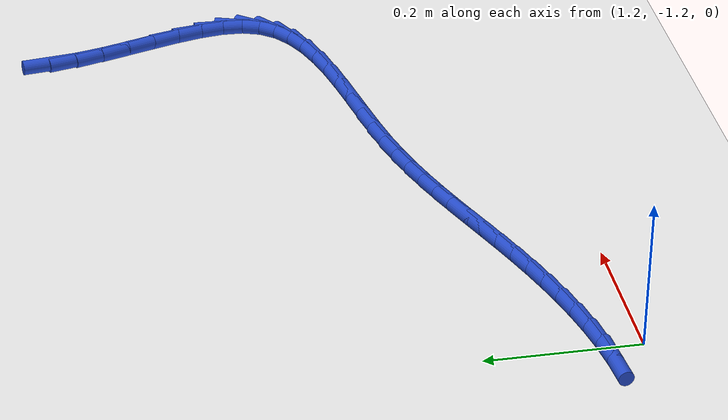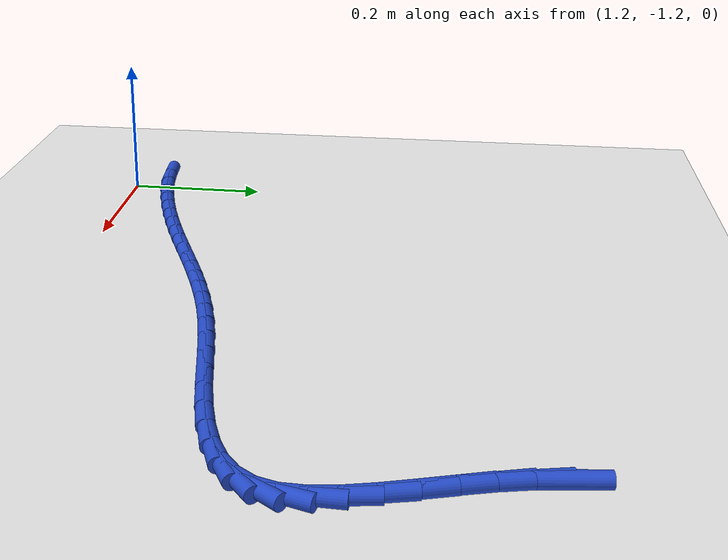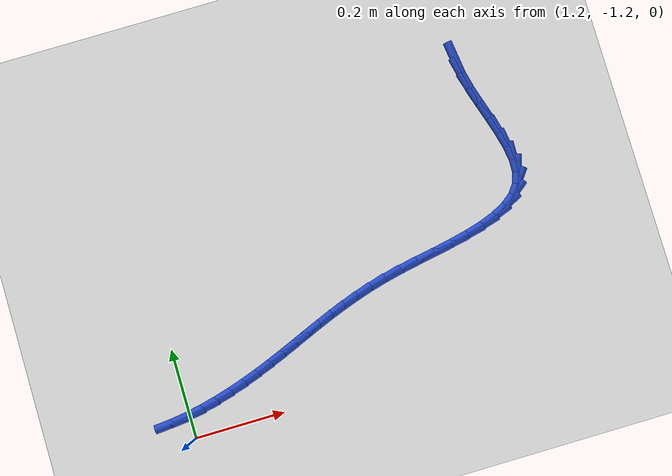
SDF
<sdf version="1.6">
 <world name="default">
  <model name="ground_plane">
   <static>1</static>
   <link name="link">
    <collision name="collision">
     <geometry><plane><normal>0 0 1</normal><size>100 100</size></plane></geometry>
     <surface><friction><ode><mu>100</mu><mu2>50</mu2></ode></friction></surface>
    </collision>
    <visual name="visual">
     <cast_shadows>0</cast_shadows>
     <geometry><plane><normal>0 0 1</normal><size>100 100</size></plane></geometry>
     <material>
      <script><uri>file://media/materials/scripts/gazebo.material</uri><name>Gazebo/WhiteGlow</name></script>
     </material>
    </visual>
   </link>
  </model>
  <model name="line">
   <link name="link_124">
    <pose>1.9785658915221223 -0.5602974525622767 0.01 0 1.57 -1.447188002186964</pose>
    <collision name="collision">
     <geometry><cylinder><radius>0.01</radius><length>0.08</length></cylinder></geometry>
    </collision>
    <visual name="visual">
     <material>
      <script><name>Gazebo/Blue</name><uri>file://media/materials/scripts/gazebo.material</uri></script>
     </material>
     <geometry><cylinder><radius>0.01</radius><length>0.08</length></cylinder></geometry>
    </visual>
   </link>
   <link name="link_125">
    <pose>1.9830121693577076 -0.5960847656764535 0.01 0 1.57 -1.3464169324519997</pose>
    <collision name="collision">
     <geometry><cylinder><radius>0.01</radius><length>0.08</length></cylinder></geometry>
    </collision>
    <visual name="visual">
     <material>
      <script><name>Gazebo/Blue</name><uri>file://media/materials/scripts/gazebo.material</uri></script>
     </material>
     <geometry><cylinder><radius>0.01</radius><length>0.08</length></cylinder></geometry>
    </visual>
   </link>
   <link name="link_126">
    <pose>1.9914670543561093 -0.6331314663726231 0.01 0 1.57 -1.2892751125752362</pose>
    <collision name="collision">
     <geometry><cylinder><radius>0.01</radius><length>0.08</length></cylinder></geometry>
    </collision>
    <visual name="visual">
     <material>
      <script><name>Gazebo/Blue</name><uri>file://media/materials/scripts/gazebo.material</uri></script>
     </material>
     <geometry><cylinder><radius>0.01</radius><length>0.08</length></cylinder></geometry>
    </visual>
   </link>
   <link name="link_127">
    <pose>2.002332422981825 -0.6707016313281876 0.01 0 1.57 -1.267827433095337</pose>
    <collision name="collision">
     <geometry><cylinder><radius>0.01</radius><length>0.08</length></cylinder></geometry>
    </collision>
    <visual name="visual">
     <material>
      <script><name>Gazebo/Blue</name><uri>file://media/materials/scripts/gazebo.material</uri></script>
     </material>
     <geometry><cylinder><radius>0.01</radius><length>0.08</length></cylinder></geometry>
    </visual>
   </link>
   <link name="link_128">
    <pose>2.014010151699355 -0.7080593372205487 0.01 0 1.57 -1.2801166031504412</pose>
    <collision name="collision">
     <geometry><cylinder><radius>0.01</radius><length>0.08</length></cylinder></geometry>
    </collision>
    <visual name="visual">
     <material>
      <script><name>Gazebo/Blue</name><uri>file://media/materials/scripts/gazebo.material</uri></script>
     </material>
     <geometry><cylinder><radius>0.01</radius><length>0.08</length></cylinder></geometry>
    </visual>
   </link>
   <link name="link_129">
    <pose>2.024902116973196 -0.7444686607271077 0.01 0 1.57 -1.330516857865101</pose>
    <collision name="collision">
     <geometry><cylinder><radius>0.01</radius><length>0.08</length></cylinder></geometry>
    </collision>
    <visual name="visual">
     <material>
      <script><name>Gazebo/Blue</name><uri>file://media/materials/scripts/gazebo.material</uri></script>
     </material>
     <geometry><cylinder><radius>0.01</radius><length>0.08</length></cylinder></geometry>
    </visual>
   </link>
   <link name="link_130">
    <pose>2.0334101952678494 -0.7791936785252662 0.01 0 1.57 -1.431597242822577</pose>
    <collision name="collision">
     <geometry><cylinder><radius>0.01</radius><length>0.08</length></cylinder></geometry>
    </collision>
    <visual name="visual">
     <material>
      <script><name>Gazebo/Blue</name><uri>file://media/materials/scripts/gazebo.material</uri></script>
     </material>
     <geometry><cylinder><radius>0.01</radius><length>0.08</length></cylinder></geometry>
    </visual>
   </link>
   <link name="link_131">
    <pose>2.0379362630478104 -0.8114984672924256 0.01 0 1.57 1.5346503075699747</pose>
    <collision name="collision">
     <geometry><cylinder><radius>0.01</radius><length>0.08</length></cylinder></geometry>
    </collision>
    <visual name="visual">
     <material>
      <script><name>Gazebo/Blue</name><uri>file://media/materials/scripts/gazebo.material</uri></script>
     </material>
     <geometry><cylinder><radius>0.01</radius><length>0.08</length></cylinder></geometry>
    </visual>
   </link>
   <link name="link_132">
    <pose>2.0368821967775808 -0.8406471037059879 0.01 0 1.57 1.2567270311621426</pose>
    <collision name="collision">
     <geometry><cylinder><radius>0.01</radius><length>0.08</length></cylinder></geometry>
    </collision>
    <visual name="visual">
     <material>
      <script><name>Gazebo/Blue</name><uri>file://media/materials/scripts/gazebo.material</uri></script>
     </material>
     <geometry><cylinder><radius>0.01</radius><length>0.08</length></cylinder></geometry>
    </visual>
   </link>
   <link name="link_133">
    <pose>2.028674464846108 -0.8659156404124461 0.01 0 1.57 0.9277550437272549</pose>
    <collision name="collision">
     <geometry><cylinder><radius>0.01</radius><length>0.08</length></cylinder></geometry>
    </collision>
    <visual name="visual">
     <material>
      <script><name>Gazebo/Blue</name><uri>file://media/materials/scripts/gazebo.material</uri></script>
     </material>
     <geometry><cylinder><radius>0.01</radius><length>0.08</length></cylinder></geometry>
    </visual>
   </link>
   <link name="link_134">
    <pose>2.0128029199559756 -0.887097985328194 0.01 0 1.57 0.6615395316225878</pose>
    <collision name="collision">
     <geometry><cylinder><radius>0.01</radius><length>0.08</length></cylinder></geometry>
    </collision>
    <visual name="visual">
     <material>
      <script><name>Gazebo/Blue</name><uri>file://media/materials/scripts/gazebo.material</uri></script>
     </material>
     <geometry><cylinder><radius>0.01</radius><length>0.08</length></cylinder></geometry>
    </visual>
   </link>
   <link name="link_135">
    <pose>1.9902043296707899 -0.9046926763667661 0.01 0 1.57 0.47527084539218234</pose>
    <collision name="collision">
     <geometry><cylinder><radius>0.01</radius><length>0.08</length></cylinder></geometry>
    </collision>
    <visual name="visual">
     <material>
      <script><name>Gazebo/Blue</name><uri>file://media/materials/scripts/gazebo.material</uri></script>
     </material>
     <geometry><cylinder><radius>0.01</radius><length>0.08</length></cylinder></geometry>
    </visual>
   </link>
   <link name="link_136">
    <pose>1.9619190475796213 -0.9192486965803808 0.01 0 1.57 0.3512147099858142</pose>
    <collision name="collision">
     <geometry><cylinder><radius>0.01</radius><length>0.08</length></cylinder></geometry>
    </collision>
    <visual name="visual">
     <material>
      <script><name>Gazebo/Blue</name><uri>file://media/materials/scripts/gazebo.material</uri></script>
     </material>
     <geometry><cylinder><radius>0.01</radius><length>0.08</length></cylinder></geometry>
    </visual>
   </link>
   <link name="link_137">
    <pose>1.9289874272715417 -0.9313150290212565 0.01 0 1.57 0.2703443900352457</pose>
    <collision name="collision">
     <geometry><cylinder><radius>0.01</radius><length>0.08</length></cylinder></geometry>
    </collision>
    <visual name="visual">
     <material>
      <script><name>Gazebo/Blue</name><uri>file://media/materials/scripts/gazebo.material</uri></script>
     </material>
     <geometry><cylinder><radius>0.01</radius><length>0.08</length></cylinder></geometry>
    </visual>
   </link>
   <link name="link_138">
    <pose>1.892449822335622 -0.9414406567416117 0.01 0 1.57 0.21974822489765167</pose>
    <collision name="collision">
     <geometry><cylinder><radius>0.01</radius><length>0.08</length></cylinder></geometry>
    </collision>
    <visual name="visual">
     <material>
      <script><name>Gazebo/Blue</name><uri>file://media/materials/scripts/gazebo.material</uri></script>
     </material>
     <geometry><cylinder><radius>0.01</radius><length>0.08</length></cylinder></geometry>
    </visual>
   </link>
   <link name="link_139">
    <pose>1.8533465863609373 -0.9501745627936655 0.01 0 1.57 0.19183879814468321</pose>
    <collision name="collision">
     <geometry><cylinder><radius>0.01</radius><length>0.08</length></cylinder></geometry>
    </collision>
    <visual name="visual">
     <material>
      <script><name>Gazebo/Blue</name><uri>file://media/materials/scripts/gazebo.material</uri></script>
     </material>
     <geometry><cylinder><radius>0.01</radius><length>0.08</length></cylinder></geometry>
    </visual>
   </link>
   <link name="link_140">
    <pose>1.812718072936557 -0.9580657302296355 0.01 0 1.57 0.18273011441152587</pose>
    <collision name="collision">
     <geometry><cylinder><radius>0.01</radius><length>0.08</length></cylinder></geometry>
    </collision>
    <visual name="visual">
     <material>
      <script><name>Gazebo/Blue</name><uri>file://media/materials/scripts/gazebo.material</uri></script>
     </material>
     <geometry><cylinder><radius>0.01</radius><length>0.08</length></cylinder></geometry>
    </visual>
   </link>
   <link name="link_141">
    <pose>1.7716046356515538 -0.9656631421017411 0.01 0 1.57 0.19124868370858783</pose>
    <collision name="collision">
     <geometry><cylinder><radius>0.01</radius><length>0.08</length></cylinder></geometry>
    </collision>
    <visual name="visual">
     <material>
      <script><name>Gazebo/Blue</name><uri>file://media/materials/scripts/gazebo.material</uri></script>
     </material>
     <geometry><cylinder><radius>0.01</radius><length>0.08</length></cylinder></geometry>
    </visual>
   </link>
   <link name="link_142">
    <pose>1.7310466280949992 -0.9735157814622004 0.01 0 1.57 0.21850475898258442</pose>
    <collision name="collision">
     <geometry><cylinder><radius>0.01</radius><length>0.08</length></cylinder></geometry>
    </collision>
    <visual name="visual">
     <material>
      <script><name>Gazebo/Blue</name><uri>file://media/materials/scripts/gazebo.material</uri></script>
     </material>
     <geometry><cylinder><radius>0.01</radius><length>0.08</length></cylinder></geometry>
    </visual>
   </link>
   <link name="link_143">
    <pose>1.6920773023865052 -0.9821689176490188 0.01 0 1.57 0.25849341533661685</pose>
    <collision name="collision">
     <geometry><cylinder><radius>0.01</radius><length>0.08</length></cylinder></geometry>
    </collision>
    <visual name="visual">
     <material>
      <script><name>Gazebo/Blue</name><uri>file://media/materials/scripts/gazebo.material</uri></script>
     </material>
     <geometry><cylinder><radius>0.01</radius><length>0.08</length></cylinder></geometry>
    </visual>
   </link>
   <link name="link_144">
    <pose>1.6552367107841406 -0.991909901079883 0.01 0 1.57 0.2967343480944651</pose>
    <collision name="collision">
     <geometry><cylinder><radius>0.01</radius><length>0.08</length></cylinder></geometry>
    </collision>
    <visual name="visual">
     <material>
      <script><name>Gazebo/Blue</name><uri>file://media/materials/scripts/gazebo.material</uri></script>
     </material>
     <geometry><cylinder><radius>0.01</radius><length>0.08</length></cylinder></geometry>
    </visual>
   </link>
   <link name="link_145">
    <pose>1.6202591350698365 -1.0026047044158446 0.01 0 1.57 0.33044533091182704</pose>
    <collision name="collision">
     <geometry><cylinder><radius>0.01</radius><length>0.08</length></cylinder></geometry>
    </collision>
    <visual name="visual">
     <material>
      <script><name>Gazebo/Blue</name><uri>file://media/materials/scripts/gazebo.material</uri></script>
     </material>
     <geometry><cylinder><radius>0.01</radius><length>0.08</length></cylinder></geometry>
    </visual>
   </link>
   <link name="link_146">
    <pose>1.5868044796863723 -1.0140804046804928 0.01 0 1.57 0.358274456460867</pose>
    <collision name="collision">
     <geometry><cylinder><radius>0.01</radius><length>0.08</length></cylinder></geometry>
    </collision>
    <visual name="visual">
     <material>
      <script><name>Gazebo/Blue</name><uri>file://media/materials/scripts/gazebo.material</uri></script>
     </material>
     <geometry><cylinder><radius>0.01</radius><length>0.08</length></cylinder></geometry>
    </visual>
   </link>
   <link name="link_147">
    <pose>1.5545326490765237 -1.0261640788974171 0.01 0 1.57 0.3790541192238676</pose>
    <collision name="collision">
     <geometry><cylinder><radius>0.01</radius><length>0.08</length></cylinder></geometry>
    </collision>
    <visual name="visual">
     <material>
      <script><name>Gazebo/Blue</name><uri>file://media/materials/scripts/gazebo.material</uri></script>
     </material>
     <geometry><cylinder><radius>0.01</radius><length>0.08</length></cylinder></geometry>
    </visual>
   </link>
   <link name="link_148">
    <pose>1.5231035476830674 -1.038682804090206 0.01 0 1.57 0.39188989361202675</pose>
    <collision name="collision">
     <geometry><cylinder><radius>0.01</radius><length>0.08</length></cylinder></geometry>
    </collision>
    <visual name="visual">
     <material>
      <script><name>Gazebo/Blue</name><uri>file://media/materials/scripts/gazebo.material</uri></script>
     </material>
     <geometry><cylinder><radius>0.01</radius><length>0.08</length></cylinder></geometry>
    </visual>
   </link>
   <link name="link_149">
    <pose>1.4921770799487803 -1.0514636572824496 0.01 0 1.57 0.39622370332853174</pose>
    <collision name="collision">
     <geometry><cylinder><radius>0.01</radius><length>0.08</length></cylinder></geometry>
    </collision>
    <visual name="visual">
     <material>
      <script><name>Gazebo/Blue</name><uri>file://media/materials/scripts/gazebo.material</uri></script>
     </material>
     <geometry><cylinder><radius>0.01</radius><length>0.08</length></cylinder></geometry>
    </visual>
   </link>
   <link name="link_150">
    <pose>1.4614131503164391 -1.0643337154977366 0.01 0 1.57 0.39187002050139874</pose>
    <collision name="collision">
     <geometry><cylinder><radius>0.01</radius><length>0.08</length></cylinder></geometry>
    </collision>
    <visual name="visual">
     <material>
      <script><name>Gazebo/Blue</name><uri>file://media/materials/scripts/gazebo.material</uri></script>
     </material>
     <geometry><cylinder><radius>0.01</radius><length>0.08</length></cylinder></geometry>
    </visual>
   </link>
   <link name="link_151">
    <pose>1.4304716632288204 -1.0771200557596565 0.01 0 1.57 0.3790281955275483</pose>
    <collision name="collision">
     <geometry><cylinder><radius>0.01</radius><length>0.08</length></cylinder></geometry>
    </collision>
    <visual name="visual">
     <material>
      <script><name>Gazebo/Blue</name><uri>file://media/materials/scripts/gazebo.material</uri></script>
     </material>
     <geometry><cylinder><radius>0.01</radius><length>0.08</length></cylinder></geometry>
    </visual>
   </link>
   <link name="link_152">
    <pose>1.399012674030792 -1.0896497408411927 0.01 0 1.57 0.3590668975688685</pose>
    <collision name="collision">
     <geometry><cylinder><radius>0.01</radius><length>0.08</length></cylinder></geometry>
    </collision>
    <visual name="visual">
     <material>
      <script><name>Gazebo/Blue</name><uri>file://media/materials/scripts/gazebo.material</uri></script>
     </material>
     <geometry><cylinder><radius>0.01</radius><length>0.08</length></cylinder></geometry>
    </visual>
   </link>
   <link name="link_153">
    <pose>1.3668012257833153 -1.101739918884895 0.01 0 1.57 0.33455993919220284</pose>
    <collision name="collision">
     <geometry><cylinder><radius>0.01</radius><length>0.08</length></cylinder></geometry>
    </collision>
    <visual name="visual">
     <material>
      <script><name>Gazebo/Blue</name><uri>file://media/materials/scripts/gazebo.material</uri></script>
     </material>
     <geometry><cylinder><radius>0.01</radius><length>0.08</length></cylinder></geometry>
    </visual>
   </link>
   <link name="link_154">
    <pose>1.333890795044739 -1.1131804994987653 0.01 0 1.57 0.30574722511283925</pose>
    <collision name="collision">
     <geometry><cylinder><radius>0.01</radius><length>0.08</length></cylinder></geometry>
    </collision>
    <visual name="visual">
     <material>
      <script><name>Gazebo/Blue</name><uri>file://media/materials/scripts/gazebo.material</uri></script>
     </material>
     <geometry><cylinder><radius>0.01</radius><length>0.08</length></cylinder></geometry>
    </visual>
   </link>
   <link name="link_155">
    <pose>1.300383956589403 -1.123756755646781 0.01 0 1.57 0.2723817687713436</pose>
    <collision name="collision">
     <geometry><cylinder><radius>0.01</radius><length>0.08</length></cylinder></geometry>
    </collision>
    <visual name="visual">
     <material>
      <script><name>Gazebo/Blue</name><uri>file://media/materials/scripts/gazebo.material</uri></script>
     </material>
     <geometry><cylinder><radius>0.01</radius><length>0.08</length></cylinder></geometry>
    </visual>
   </link>
   <link name="link_156">
    <pose>1.266383285191649 -1.1332539602929181 0.01 0 1.57 0.23415235399349138</pose>
    <collision name="collision">
     <geometry><cylinder><radius>0.01</radius><length>0.08</length></cylinder></geometry>
    </collision>
    <visual name="visual">
     <material>
      <script><name>Gazebo/Blue</name><uri>file://media/materials/scripts/gazebo.material</uri></script>
     </material>
     <geometry><cylinder><radius>0.01</radius><length>0.08</length></cylinder></geometry>
    </visual>
   </link>
   <link name="link_157">
    <pose>1.2319913556258155 -1.1414573864011546 0.01 0 1.57 0.19069924806348976</pose>
    <collision name="collision">
     <geometry><cylinder><radius>0.01</radius><length>0.08</length></cylinder></geometry>
    </collision>
    <visual name="visual">
     <material>
      <script><name>Gazebo/Blue</name><uri>file://media/materials/scripts/gazebo.material</uri></script>
     </material>
     <geometry><cylinder><radius>0.01</radius><length>0.08</length></cylinder></geometry>
    </visual>
   </link>
   <link name="link_158">
    <pose>1.1973107426662457 -1.1481523069354664 0.01 0 1.57 0.1416364280557821</pose>
    <collision name="collision">
     <geometry><cylinder><radius>0.01</radius><length>0.08</length></cylinder></geometry>
    </collision>
    <visual name="visual">
     <material>
      <script><name>Gazebo/Blue</name><uri>file://media/materials/scripts/gazebo.material</uri></script>
     </material>
     <geometry><cylinder><radius>0.01</radius><length>0.08</length></cylinder></geometry>
    </visual>
   </link>
   <link name="link_159">
    <pose>1.1624440210872784 -1.15312399485983 0.01 0 1.57 0.08658429885617257</pose>
    <collision name="collision">
     <geometry><cylinder><radius>0.01</radius><length>0.08</length></cylinder></geometry>
    </collision>
    <visual name="visual">
     <material>
      <script><name>Gazebo/Blue</name><uri>file://media/materials/scripts/gazebo.material</uri></script>
     </material>
     <geometry><cylinder><radius>0.01</radius><length>0.08</length></cylinder></geometry>
    </visual>
   </link>
  </model>
 </world>
</sdf>
